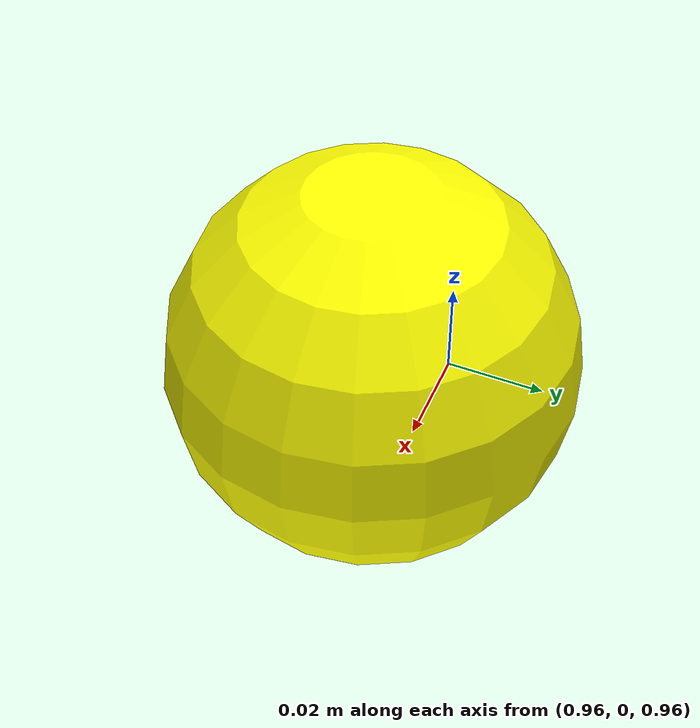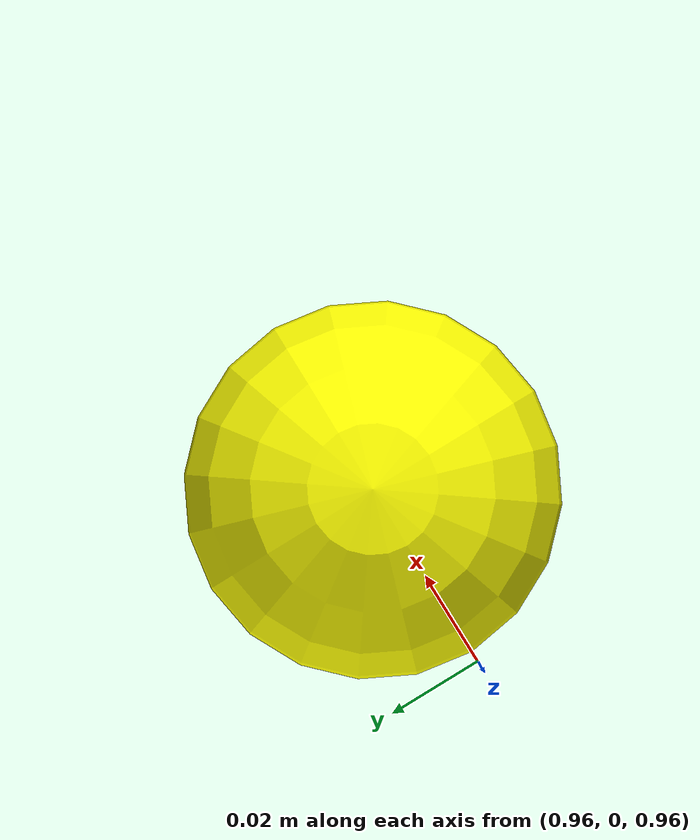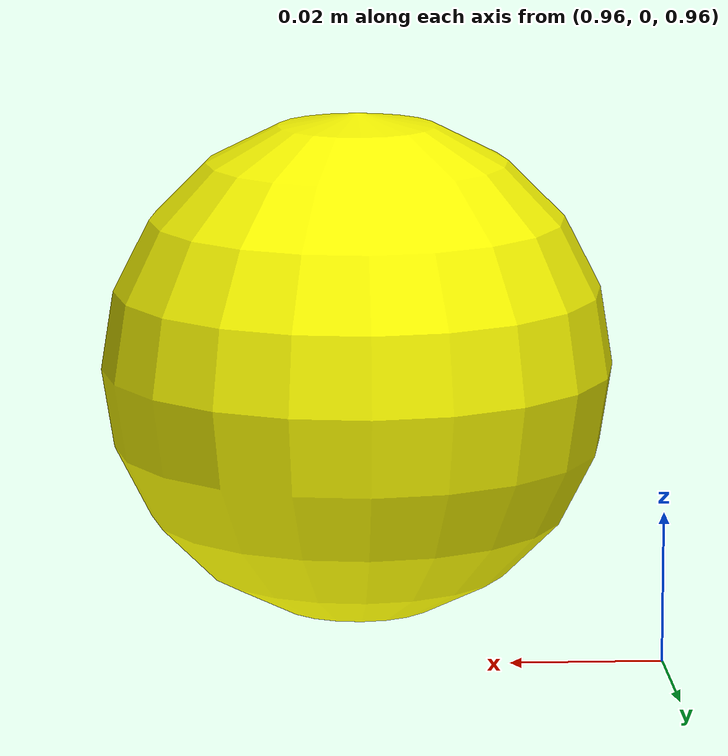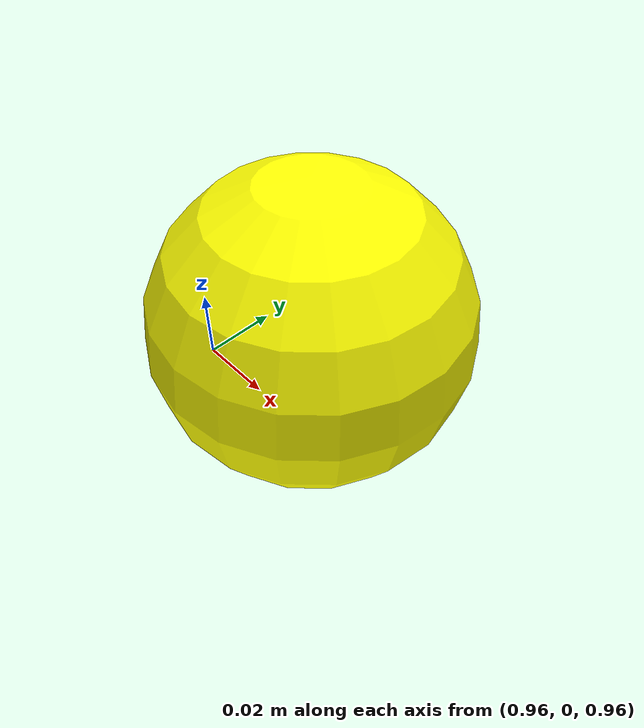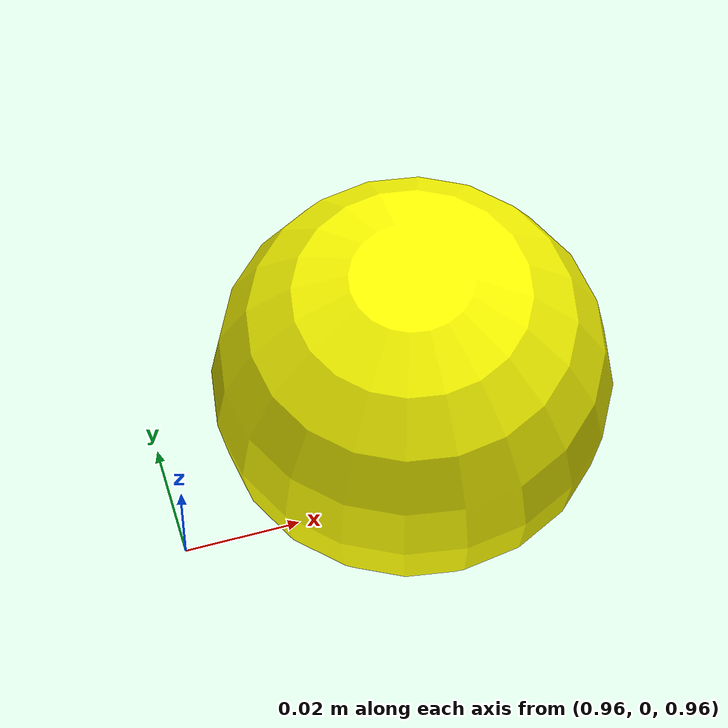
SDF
<sdf version="1.6">
  <world name="empty">
    <physics name="1ms" type="ignored">
      <max_step_size>0.001</max_step_size>
      <real_time_factor>1.0</real_time_factor>
    </physics>
    <plugin
      filename="gz-sim-physics-system"
      name="gz::sim::systems::Physics">
    </plugin>
    <plugin
      filename="gz-sim-user-commands-system"
      name="gz::sim::systems::UserCommands">
    </plugin>
    <plugin
      filename="gz-sim-scene-broadcaster-system"
      name="gz::sim::systems::SceneBroadcaster">
    </plugin>
    <plugin
      filename="gz-sim-sensors-system"
      name="gz::sim::systems::Sensors">
      <render_engine>ogre2</render_engine>
    </plugin>
    <plugin
      filename="gz-sim-contact-system"
      name="gz::sim::systems::Contact">
    </plugin>

    <light type="directional" name="sun">
      <cast_shadows>true</cast_shadows>
      <pose>0 0 10 0 0 0</pose>
      <diffuse>0.8 0.8 0.8 1</diffuse>
      <specular>0.2 0.2 0.2 1</specular>
      <attenuation>
        <range>1000</range>
        <constant>0.9</constant>
        <linear>0.01</linear>
        <quadratic>0.001</quadratic>
      </attenuation>
      <direction>-0.5 0.1 -0.9</direction>
    </light>

    <model name="ground_plane">
      <static>true</static>
      <link name="link">
        <collision name='ground_collision'>
            <geometry>
                <plane>
                    <normal>0 0 1</normal>
                    <size>100 100</size>
                </plane>
            </geometry>
            <surface>
                <friction>
                    <ode/>
                </friction>
                <bounce>
                    <restitution_coefficient>0.9</restitution_coefficient>
                    <threshold>0.01</threshold>
                </bounce>
                <contact>
                    <soft_cfm>0.00001</soft_cfm>
                    <soft_erp>0.9</soft_erp>
                </contact>
            </surface>
        </collision>
        <visual name="visual">
          <geometry>
            <plane>
              <normal>0 0 1</normal>
              <size>100 100</size>
            </plane>
          </geometry>
          <material>
            <ambient>0.8 0.8 0.8 1</ambient>
            <diffuse>0.8 0.8 0.8 1</diffuse>
            <specular>0.8 0.8 0.8 1</specular>
          </material>
        </visual>
      </link>
    </model>

    <model name='tennis_ball'>
      <pose>1.0 0 1 0 0 0</pose>
      <link name='tennis_ball_link'>
          <inertial>
              <mass>0.057</mass>
              <inertia>
                  <ixx>0.00002</ixx>
                  <ixy>0</ixy>
                  <ixz>0</ixz>
                  <iyy>0.00002</iyy>
                  <iyz>0</iyz>
                  <izz>0.00002</izz>
              </inertia>
          </inertial>
          <collision name='tennis_ball_collision'>
              <geometry>
                  <sphere>
                      <radius>0.033</radius>
                  </sphere>
              </geometry>
              <surface>
                  <friction>
                      <ode>
                          <mu>0.35</mu>
                          <mu2>0.35</mu2>
                      </ode>
                  </friction>
                  <bounce>
                      <restitution_coefficient>0.8</restitution_coefficient> <!-- Rebote casi completo -->
                      <threshold>0.001</threshold> <!-- Se activa a velocidades muy bajas -->
                  </bounce>
                  <contact>
                      <soft_cfm>0.00001</soft_cfm> <!-- Simula un material más sólido -->
                      <soft_erp>0.85</soft_erp> <!-- Permite recuperar casi toda la energía del impacto -->
                  </contact>
              </surface>
          </collision>
          <visual name='tennis_ball_visual'>
              <geometry>
                  <sphere>
                      <radius>0.033</radius>
                  </sphere>
              </geometry>
              <material>
                  <ambient>0.8 0.8 0.0 1</ambient>
                  <diffuse>1.0 1.0 0.0 1</diffuse>
                  <specular>0.5 0.5 0.5 1</specular>
              </material>
          </visual>
      </link>
      <static>false</static>
      <self_collide>false</self_collide>
  </model>

  </world>
</sdf>
